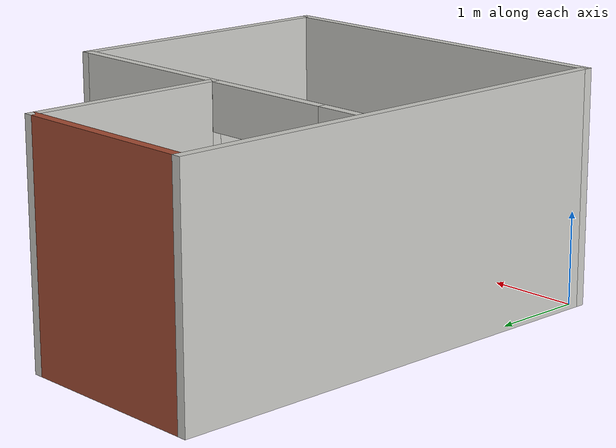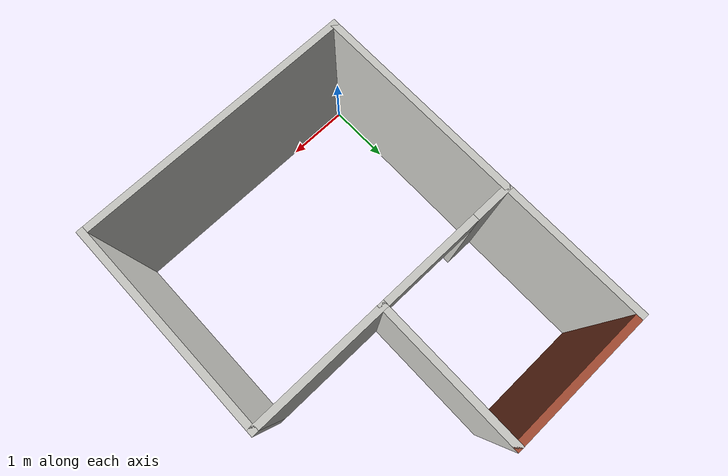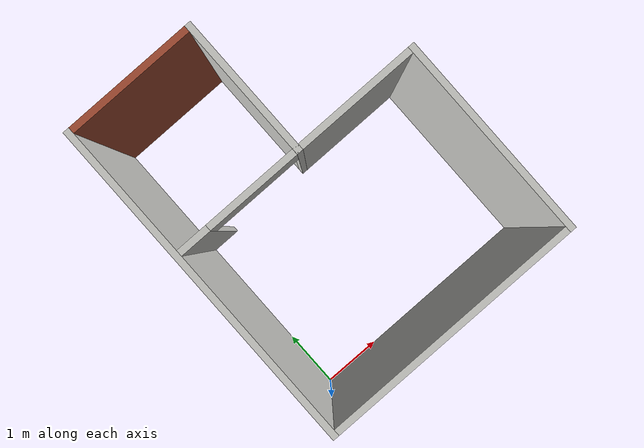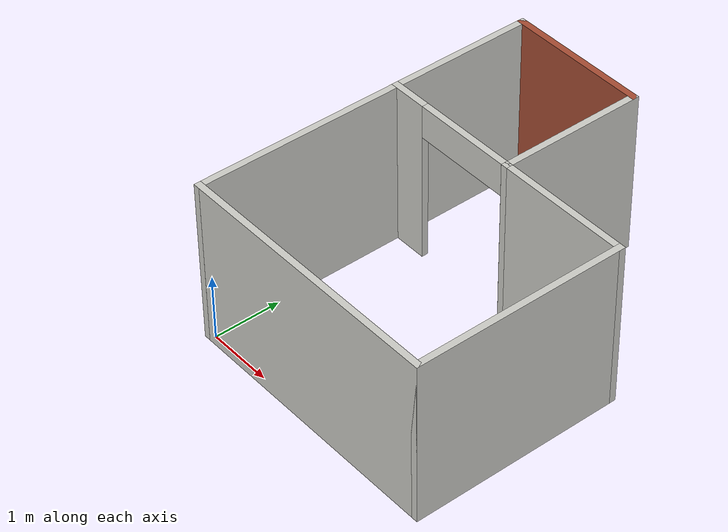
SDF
<?xml version='1.0'?>
<sdf version='1.6'>
  <model name='building_2'>
    <pose frame=''>2 2.561 0 0 -0 0</pose>
    <link name='Wall_0'>
      <collision name='Wall_0_Collision'>
        <geometry>
          <box>
            <size>5.32236 0.1 2.5</size>
          </box>
        </geometry>
        <pose frame=''>0 0 1.25 0 -0 0</pose>
      </collision>
      <visual name='Wall_0_Visual'>
        <pose frame=''>0 0 1.25 0 -0 0</pose>
        <geometry>
          <box>
            <size>5.32236 0.1 2.5</size>
          </box>
        </geometry>
        <material>
          <script>
            <uri>file://media/materials/scripts/gazebo.material</uri>
            <name>Gazebo/CeilingTiled</name>
          </script>
          <ambient>1 1 1 1</ambient>
        </material>
        <meta>
          <layer>0</layer>
        </meta>
      </visual>
      <pose frame=''>-2.05 0 0 0 -0 1.5708</pose>
    </link>
    <link name='Wall_10'>
      <collision name='Wall_10_Collision'>
        <geometry>
          <box>
            <size>3.2 0.1 2.5</size>
          </box>
        </geometry>
        <pose frame=''>0 0 1.25 0 -0 0</pose>
      </collision>
      <visual name='Wall_10_Visual'>
        <pose frame=''>0 0 1.25 0 -0 0</pose>
        <geometry>
          <box>
            <size>3.2 0.1 2.5</size>
          </box>
        </geometry>
        <material>
          <script>
            <uri>file://media/materials/scripts/gazebo.material</uri>
            <name>Gazebo/CeilingTiled</name>
          </script>
          <ambient>1 1 1 1</ambient>
        </material>
        <meta>
          <layer>0</layer>
        </meta>
      </visual>
      <pose frame=''>2.05 -1.061 0 0 -0 1.5708</pose>
    </link>
    <link name='Wall_16'>
      <collision name='Wall_16_Collision'>
        <geometry>
          <box>
            <size>2.22236 0.1 2.5</size>
          </box>
        </geometry>
        <pose frame=''>0 0 1.25 0 -0 0</pose>
      </collision>
      <visual name='Wall_16_Visual'>
        <pose frame=''>0 0 1.25 0 -0 0</pose>
        <geometry>
          <box>
            <size>2.22236 0.1 2.5</size>
          </box>
        </geometry>
        <material>
          <script>
            <uri>file://media/materials/scripts/gazebo.material</uri>
            <name>Gazebo/CeilingTiled</name>
          </script>
          <ambient>1 1 1 1</ambient>
        </material>
        <meta>
          <layer>0</layer>
        </meta>
      </visual>
      <pose frame=''>0.05 1.55 0 0 -0 -1.5708</pose>
    </link>
    <link name='Wall_18'>
      <collision name='Wall_18_Collision'>
        <geometry>
          <box>
            <size>2.1 0.1 2.5</size>
          </box>
        </geometry>
        <pose frame=''>0 0 1.25 0 -0 0</pose>
      </collision>
      <visual name='Wall_18_Visual'>
        <pose frame=''>0 0 1.25 0 -0 0</pose>
        <geometry>
          <box>
            <size>2.1 0.1 2.5</size>
          </box>
        </geometry>
        <material>
          <script>
            <uri>file://media/materials/scripts/gazebo.material</uri>
            <name>Gazebo/CeilingTiled</name>
          </script>
          <ambient>1 1 1 1</ambient>
        </material>
        <meta>
          <layer>0</layer>
        </meta>
      </visual>
      <pose frame=''>1.05 0.489 0 0 -0 3.14159</pose>
    </link>
    <link name='Wall_20'>
      <collision name='Wall_20_Collision'>
        <geometry>
          <box>
            <size>2.2 0.1 2.5</size>
          </box>
        </geometry>
        <pose frame=''>0 0 1.25 0 -0 0</pose>
      </collision>
      <visual name='Wall_20_Visual'>
        <pose frame=''>0 0 1.25 0 -0 0</pose>
        <geometry>
          <box>
            <size>2.2 0.1 2.5</size>
          </box>
        </geometry>
        <material>
          <script>
            <uri>file://media/materials/scripts/gazebo.material</uri>
            <name>Gazebo/Bricks</name>
          </script>
          <ambient>1 1 1 1</ambient>
        </material>
        <meta>
          <layer>0</layer>
        </meta>
      </visual>
      <pose frame=''>-1 2.611 0 0 -0 0</pose>
    </link>
    <link name='Wall_6'>
      <pose frame=''>-1 0.489 0 0 -0 0</pose>
      <visual name='Wall_6_Visual_0'>
        <pose frame=''>-0.800509 0 1.25 0 -0 0</pose>
        <geometry>
          <box>
            <size>0.598982 0.1 2.5</size>
          </box>
        </geometry>
        <material>
          <script>
            <uri>file://media/materials/scripts/gazebo.material</uri>
            <name>Gazebo/CeilingTiled</name>
          </script>
          <ambient>1 1 1 1</ambient>
        </material>
        <meta>
          <layer>0</layer>
        </meta>
      </visual>
      <collision name='Wall_6_Collision_0'>
        <geometry>
          <box>
            <size>0.598982 0.1 2.5</size>
          </box>
        </geometry>
        <pose frame=''>-0.800509 0 1.25 0 -0 0</pose>
      </collision>
      <visual name='Wall_6_Visual_1'>
        <pose frame=''>1.04949 0 1.25 0 -0 0</pose>
        <geometry>
          <box>
            <size>0.101018 0.1 2.5</size>
          </box>
        </geometry>
        <material>
          <script>
            <uri>file://media/materials/scripts/gazebo.material</uri>
            <name>Gazebo/CeilingTiled</name>
          </script>
          <ambient>1 1 1 1</ambient>
        </material>
        <meta>
          <layer>0</layer>
        </meta>
      </visual>
      <collision name='Wall_6_Collision_1'>
        <geometry>
          <box>
            <size>0.101018 0.1 2.5</size>
          </box>
        </geometry>
        <pose frame=''>1.04949 0 1.25 0 -0 0</pose>
      </collision>
      <visual name='Wall_6_Visual_2'>
        <pose frame=''>0.248982 0 2.25 0 -0 0</pose>
        <geometry>
          <box>
            <size>1.5 0.1 0.5</size>
          </box>
        </geometry>
        <material>
          <script>
            <uri>file://media/materials/scripts/gazebo.material</uri>
            <name>Gazebo/CeilingTiled</name>
          </script>
          <ambient>1 1 1 1</ambient>
        </material>
        <meta>
          <layer>0</layer>
        </meta>
      </visual>
      <collision name='Wall_6_Collision_2'>
        <geometry>
          <box>
            <size>1.5 0.1 0.5</size>
          </box>
        </geometry>
        <pose frame=''>0.248982 0 2.25 0 -0 0</pose>
      </collision>
    </link>
    <link name='Wall_8'>
      <collision name='Wall_8_Collision'>
        <geometry>
          <box>
            <size>4.2 0.1 2.5</size>
          </box>
        </geometry>
        <pose frame=''>0 0 1.25 0 -0 0</pose>
      </collision>
      <visual name='Wall_8_Visual'>
        <pose frame=''>0 0 1.25 0 -0 0</pose>
        <geometry>
          <box>
            <size>4.2 0.1 2.5</size>
          </box>
        </geometry>
        <material>
          <script>
            <uri>file://media/materials/scripts/gazebo.material</uri>
            <name>Gazebo/CeilingTiled</name>
          </script>
          <ambient>1 1 1 1</ambient>
        </material>
        <meta>
          <layer>0</layer>
        </meta>
      </visual>
      <pose frame=''>-0 -2.611 0 0 -0 0</pose>
    </link>
    <static>1</static>
  </model>
</sdf>
